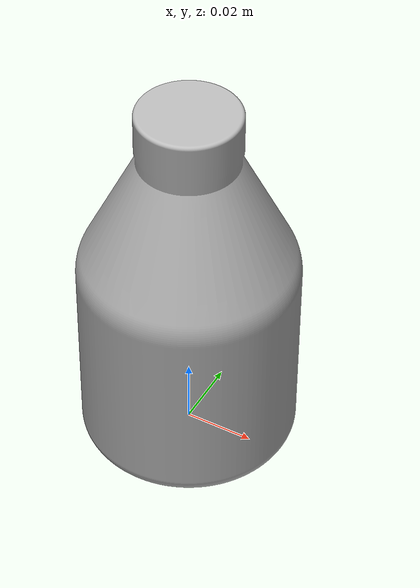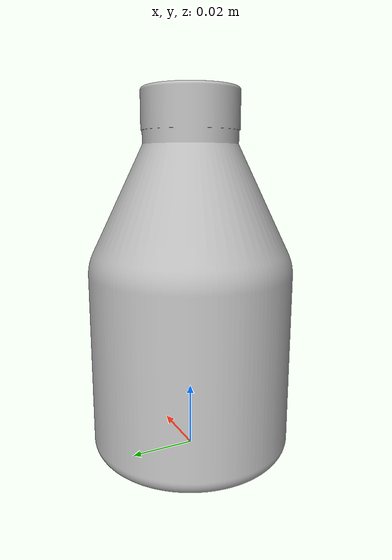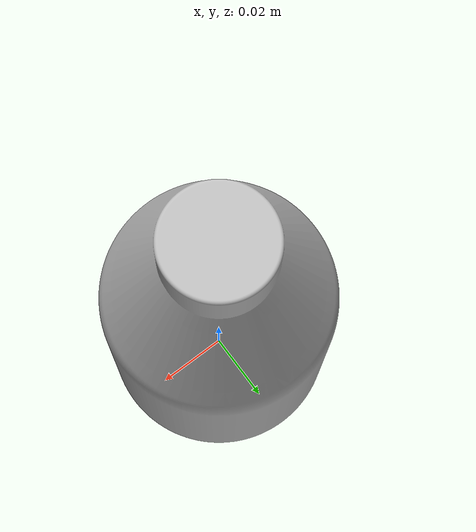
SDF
<?xml version="1.0" ?>
<sdf version="1.6">
  <model name="waterbottle_8oz">
    <static>false</static>
    <link name="body">
      <pose>0 0 0 0 0 0</pose>
      <inertial>
        <pose>0 0 0 0 0 0</pose>
        <mass>0.25</mass>
        <inertia>
          <ixx>0.000408</ixx>
          <ixy>0.00</ixy>
          <ixz>0.00</ixz>
          <iyy>0.000408</iyy>
          <iyz>0.00</iyz>
          <izz>0.000113</izz>
        </inertia>
      </inertial>

      <collision name="collision">
        <pose>0 0 0 0 0 0</pose>
        <geometry>
          <cylinder>
            <radius>0.03</radius>
            <length>0.13</length>
          </cylinder>
        </geometry>
        <surface>
          <bounce>
            <restitution_coefficient>0.4</restitution_coefficient>
            <threshold>0.01</threshold>
          </bounce>
          <contact>
            <ode>
              <max_vel>10.0</max_vel>
            </ode>
          </contact>
        </surface>
      </collision>

      <visual name="visual">
        <pose>0 0 0 0 0 0</pose>
        <geometry>
          <mesh>
            <scale>1 1 1</scale>
            <uri>meshes/waterbottle.dae</uri>
          </mesh>
        </geometry>
      </visual>
    </link>

    <plugin name="gz::sim::systems::LiftDrag"
        filename="gz-sim-lift-drag-system">
      <a0>0</a0>
      <cla>0</cla> <cda>0.008</cda> <alpha_stall>1.5708</alpha_stall>
      <cla_stall>0</cla_stall>
      <cda_stall>0.008</cda_stall> <cp>0 0 0</cp> <area>0.0078</area> <air_density>1.204</air_density>
      <forward>1 0 0</forward>
      <upward>0 0 1</upward>
      <link_name>body</link_name>
    </plugin>
  </model>
</sdf>
